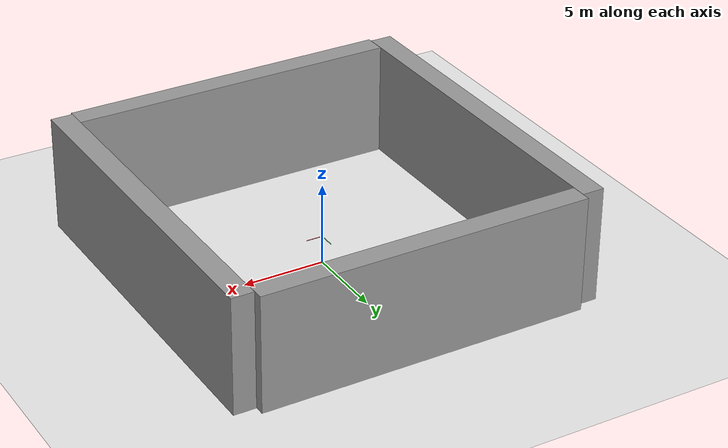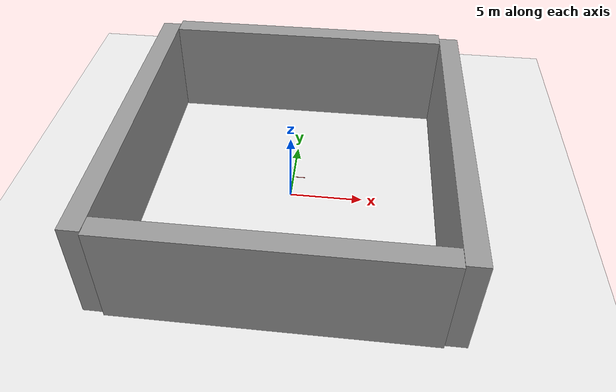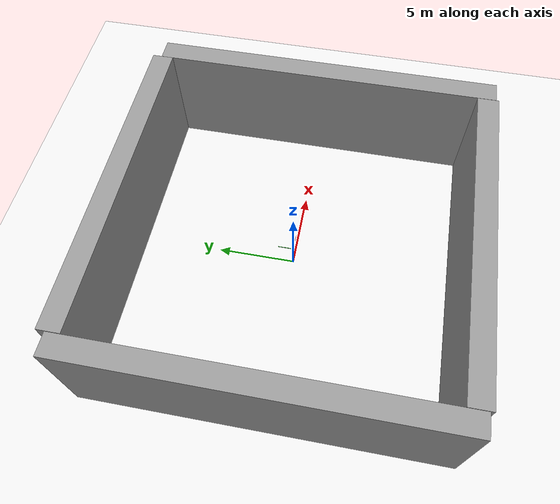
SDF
<sdf version="1.7">
 <world name="default">
  <physics type="ode">
   <max_step_size>2e-06</max_step_size>
   <real_time_update_rate>500000</real_time_update_rate>
   <real_time_factor>1</real_time_factor>
  </physics>
  <light name="sun" type="directional">
   <pose>0 0 30 0 -0 0</pose>
   <diffuse>0.8 0.8 0.8 1</diffuse>
   <specular>0.2 0.2 0.2 1</specular>
   <attenuation>
    <range>1000</range>
    <constant>0.9</constant>
    <linear>0.01</linear>
    <quadratic>0.001</quadratic>
   </attenuation>
   <direction>-0.5 0.1 -0.9</direction>
   <spot><inner_angle>0</inner_angle><outer_angle>0</outer_angle><falloff>0</falloff></spot>
  </light>
  <model name="ground_plane">
   <static>1</static>
   <link name="link">
    <collision name="collision">
     <geometry><plane><normal>0 0 1</normal><size>100 100</size></plane></geometry>
     <surface>
      <contact><collide_bitmask>65535</collide_bitmask></contact>
      <friction><ode><mu>100</mu><mu2>50</mu2></ode></friction>
     </surface>
    </collision>
    <visual name="visual">
     <cast_shadows>0</cast_shadows>
     <geometry><plane><normal>0 0 1</normal><size>100 100</size></plane></geometry>
     <material>
      <script><uri>file://media/materials/scripts/gazebo.material</uri><name>Gazebo/White</name></script>
     </material>
    </visual>
   </link>
  </model>
  <model name="my_velodyne">
   <pose>0 0 1.69067 0 -0 0</pose>
   <link name="base">
    <pose>0 0 0.029335 0 -0 0</pose>
    <inertial>
     <mass>100000</mass>
     <inertia><ixx>1</ixx><ixy>0</ixy><ixz>0</ixz><iyy>1</iyy><iyz>0</iyz><izz>1</izz></inertia>
    </inertial>
    <collision name="base_collision">
     <geometry><cylinder><radius>0.04267</radius><length>0.05867</length></cylinder></geometry>
    </collision>
    <visual name="base_visual">
     <geometry><cylinder><radius>0.04267</radius><length>0.05867</length></cylinder></geometry>
     <material><ambient>0.25 0.25 0.25 1</ambient></material>
    </visual>
    <visual name="base_visual_x">
     <pose>0.5 0 0 0 1.57 0</pose>
     <geometry><cylinder><radius>0.02</radius><length>1</length></cylinder></geometry>
     <material><ambient>0.8 0.25 0.25 1</ambient></material>
    </visual>
    <visual name="base_visual_y">
     <pose>0 0.5 0 1.57 -0 0</pose>
     <geometry><cylinder><radius>0.02</radius><length>1</length></cylinder></geometry>
     <material><ambient>0.25 0.8 0.25 1</ambient></material>
    </visual>
    <visual name="base_visual_z">
     <pose>0 0 0.5 0 -0 1.57</pose>
     <geometry><cylinder><radius>0.02</radius><length>1</length></cylinder></geometry>
     <material><ambient>0.25 0.25 0.8 1</ambient></material>
    </visual>
   </link>
   <link name="top">
    <pose>0 0 0.095455 0 -0 0</pose>
    <inertial>
     <mass>0.1</mass>
     <inertia>
      <ixx>9.0623e-05</ixx>
      <iyy>9.0623e-05</iyy>
      <izz>9.1036e-05</izz>
      <ixy>0</ixy>
      <ixz>0</ixz>
      <iyz>0</iyz>
     </inertia>
    </inertial>
    <collision name="top_collision">
     <geometry><cylinder><radius>0.04267</radius><length>0.07357</length></cylinder></geometry>
    </collision>
    <visual name="top_visual">
     <geometry><cylinder><radius>0.04267</radius><length>0.07357</length></cylinder></geometry>
    </visual>
    <sensor name="sensor" type="ray">
     <pose>0 0 -0.004645 1.5707 -0 0</pose>
     <visualize>1</visualize>
     <update_rate>45000</update_rate>
     <ray>
      <noise><type>gaussian</type><mean>0</mean><stddev>0.02</stddev></noise>
      <scan>
       <horizontal>
        <samples>64</samples>
        <resolution>1</resolution>
        <min_angle>-0.535292</min_angle>
        <max_angle>0.186227</max_angle>
       </horizontal>
       <vertical><samples>1</samples><min_angle>0</min_angle><max_angle>0</max_angle></vertical>
      </scan>
      <range><min>0.25</min><max>70</max><resolution>0.01</resolution></range>
     </ray>
     <plugin name="sensor_plugin" filename="libgazebo_ros_laser.so">
      <topicName>/my_velodyne/top/sensor/scan</topicName>
      <frameName>/base</frameName>
     </plugin>
    </sensor>
   </link>
   <joint name="joint" type="revolute">
    <pose>0 0 -0.036785 0 -0 0</pose>
    <parent>base</parent>
    <child>top</child>
    <axis>
     <xyz>0 0 1</xyz>
     <limit><lower>-1e+16</lower><upper>1e+16</upper></limit>
     <dynamics><spring_reference>0</spring_reference><spring_stiffness>0</spring_stiffness></dynamics>
    </axis>
   </joint>
   <plugin name="velodyne_control" filename="./libvelodyne_plugin.so"/>
  </model>
  <gravity>0 0 0</gravity>
  <magnetic_field>6e-06 2.3e-05 -4.2e-05</magnetic_field>
  <atmosphere type="adiabatic"/>
  <scene><ambient>0.4 0.4 0.4 1</ambient><background>0.7 0.7 0.7 1</background><shadows>1</shadows></scene>
  <spherical_coordinates>
   <surface_model>EARTH_WGS84</surface_model>
   <latitude_deg>0</latitude_deg>
   <longitude_deg>0</longitude_deg>
   <elevation>0</elevation>
   <heading_deg>0</heading_deg>
  </spherical_coordinates>
  <model name="unit_box_clone_0">
   <pose>0.080212 10.7006 3.50873 -1e-06 1.2e-05 1.57309</pose>
   <link name="link">
    <inertial>
     <mass>1</mass>
     <inertia>
      <ixx>0.166667</ixx>
      <ixy>0</ixy>
      <ixz>0</ixz>
      <iyy>0.166667</iyy>
      <iyz>0</iyz>
      <izz>0.166667</izz>
     </inertia>
    </inertial>
    <collision name="collision"><geometry><box><size>1.33485 19.8699 7</size></box></geometry></collision>
    <visual name="visual">
     <geometry><box><size>1.33485 19.8699 7</size></box></geometry>
     <material>
      <script><name>Gazebo/Grey</name><uri>file://media/materials/scripts/gazebo.material</uri></script>
     </material>
    </visual>
   </link>
  </model>
  <model name="unit_box_clone_0_clone">
   <pose>0.106459 -10.7476 3.50208 -0 -6e-06 1.5721</pose>
   <link name="link">
    <inertial>
     <mass>1</mass>
     <inertia>
      <ixx>0.166667</ixx>
      <ixy>0</ixy>
      <ixz>0</ixz>
      <iyy>0.166667</iyy>
      <iyz>0</iyz>
      <izz>0.166667</izz>
     </inertia>
    </inertial>
    <collision name="collision"><geometry><box><size>1.33485 19.8699 7</size></box></geometry></collision>
    <visual name="visual">
     <geometry><box><size>1.33485 19.8699 7</size></box></geometry>
     <material>
      <script><name>Gazebo/Grey</name><uri>file://media/materials/scripts/gazebo.material</uri></script>
     </material>
    </visual>
   </link>
  </model>
  <model name="unit_box_clone_0_clone_0">
   <pose>10.7041 -0.211317 3.50208 6e-06 -0 0.001304</pose>
   <link name="link">
    <inertial>
     <mass>1</mass>
     <inertia>
      <ixx>0.166667</ixx>
      <ixy>0</ixy>
      <ixz>0</ixz>
      <iyy>0.166667</iyy>
      <iyz>0</iyz>
      <izz>0.166667</izz>
     </inertia>
    </inertial>
    <collision name="collision"><geometry><box><size>1.33485 22.057 7</size></box></geometry></collision>
    <visual name="visual">
     <geometry><box><size>1.33485 22.057 7</size></box></geometry>
     <material>
      <script><name>Gazebo/Grey</name><uri>file://media/materials/scripts/gazebo.material</uri></script>
     </material>
    </visual>
   </link>
  </model>
  <model name="unit_box_clone_0_clone_0_clone">
   <pose>-10.5271 -0.182106 3.50208 6e-06 -0 0.001304</pose>
   <link name="link">
    <inertial>
     <mass>1</mass>
     <inertia>
      <ixx>0.166667</ixx>
      <ixy>0</ixy>
      <ixz>0</ixz>
      <iyy>0.166667</iyy>
      <iyz>0</iyz>
      <izz>0.166667</izz>
     </inertia>
    </inertial>
    <collision name="collision"><geometry><box><size>1.33485 22.0569 7</size></box></geometry></collision>
    <visual name="visual">
     <geometry><box><size>1.33485 22.0569 7</size></box></geometry>
     <material>
      <script><name>Gazebo/Grey</name><uri>file://media/materials/scripts/gazebo.material</uri></script>
     </material>
    </visual>
   </link>
  </model>
 </world>
</sdf>
